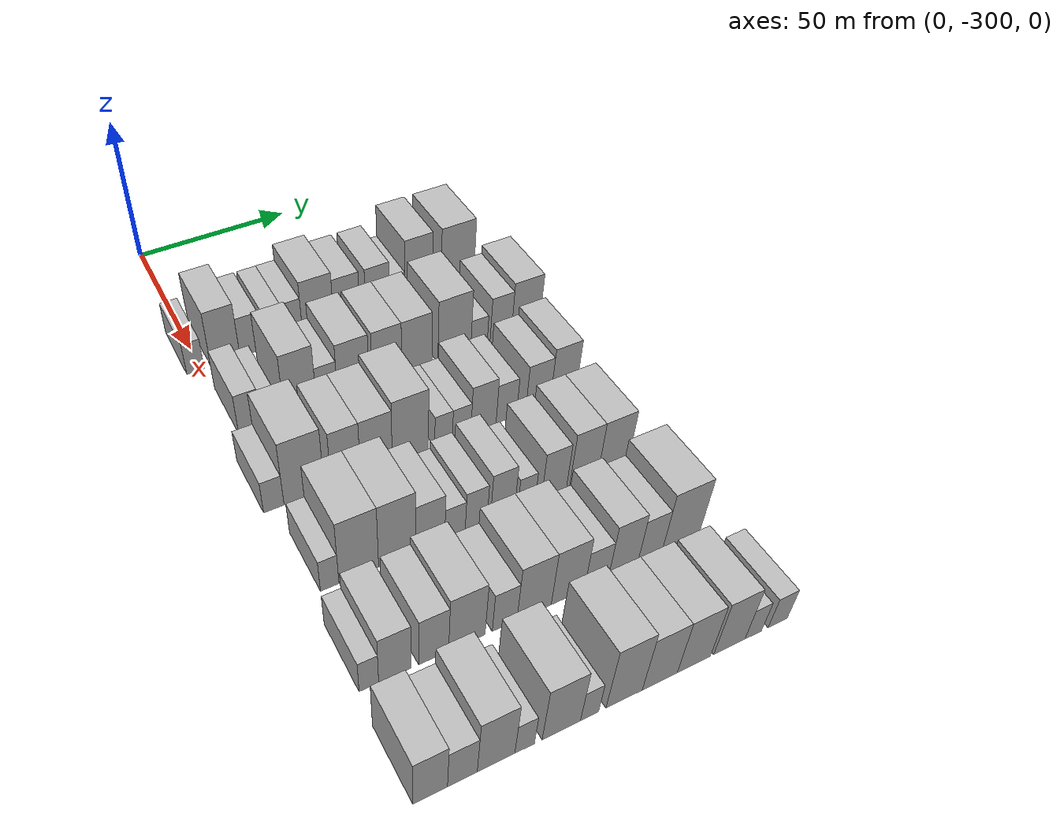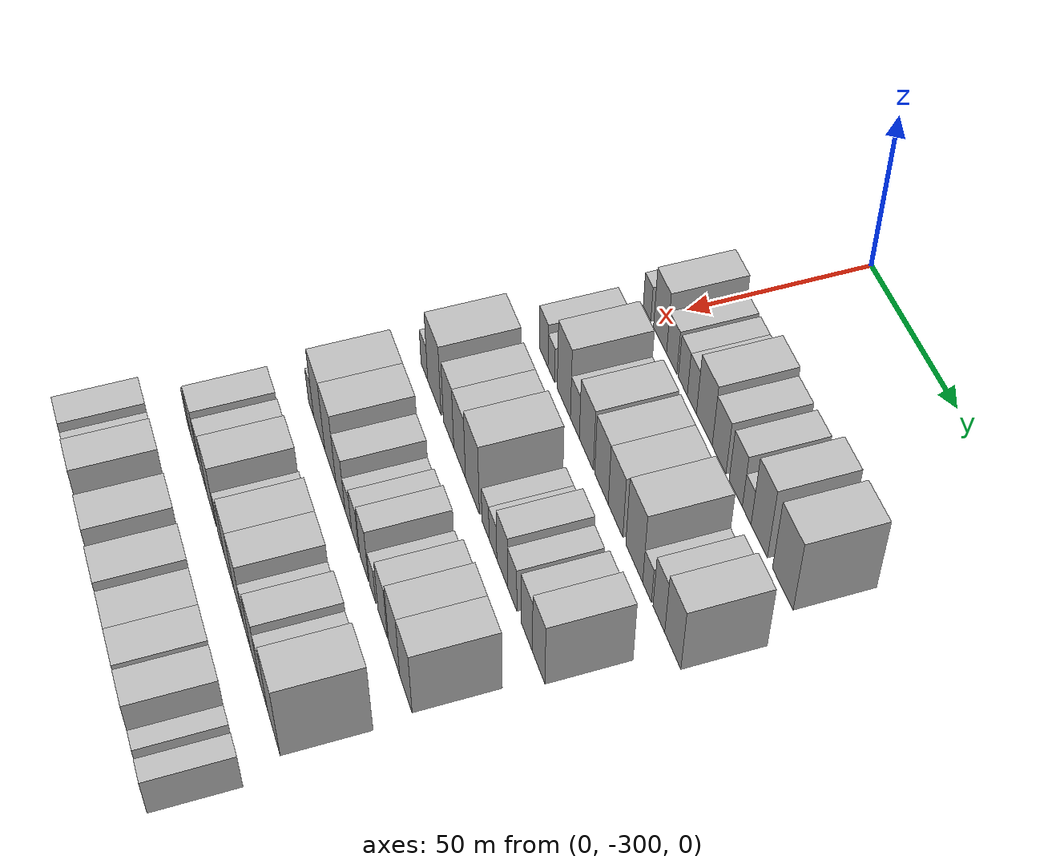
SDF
<sdf version="1.6">
 <world name="default">
  <model name="building_25">
   <static>1</static>
   <pose>50.0000 -301.7349 0 0.000000 0.000000 0.000000</pose>
   <link name="link">
    <pose>0 0 6.00 0 0 0</pose>
    <collision name="collision"><geometry><box><size>20.0000 5.4171 12.0000</size></box></geometry></collision>
    <visual name="visual">
     <cast_shadows>0</cast_shadows>
     <geometry><box><size>20.0000 5.4171 12.0000</size></box></geometry>
     <material>
      <script>
       <uri>model://HANNAS_wall/materials/scripts</uri>
       <uri>model://HANNAS_wall/materials/textures</uri>
       <name>vrc/HANNAS_wall</name>
      </script>
     </material>
    </visual>
   </link>
  </model>
  <model name="building_26">
   <static>1</static>
   <pose>50.0000 -292.4270 0 0.000000 0.000000 0.000000</pose>
   <link name="link">
    <pose>0 0 10.50 0 0 0</pose>
    <collision name="collision"><geometry><box><size>20.0000 9.1986 21.0000</size></box></geometry></collision>
    <visual name="visual">
     <cast_shadows>0</cast_shadows>
     <geometry><box><size>20.0000 9.1986 21.0000</size></box></geometry>
     <material>
      <script>
       <uri>model://HANNAS_wall/materials/scripts</uri>
       <uri>model://HANNAS_wall/materials/textures</uri>
       <name>vrc/HANNAS_wall</name>
      </script>
     </material>
    </visual>
   </link>
  </model>
  <model name="building_27">
   <static>1</static>
   <pose>50.0000 -284.2589 0 0.000000 0.000000 0.000000</pose>
   <link name="link">
    <pose>0 0 7.50 0 0 0</pose>
    <collision name="collision"><geometry><box><size>20.0000 7.1375 15.0000</size></box></geometry></collision>
    <visual name="visual">
     <cast_shadows>0</cast_shadows>
     <geometry><box><size>20.0000 7.1375 15.0000</size></box></geometry>
     <material>
      <script>
       <uri>model://HANNAS_wall/materials/scripts</uri>
       <uri>model://HANNAS_wall/materials/textures</uri>
       <name>vrc/HANNAS_wall</name>
      </script>
     </material>
    </visual>
   </link>
  </model>
  <model name="building_28">
   <static>1</static>
   <pose>50.0000 -276.6328 0 0.000000 0.000000 0.000000</pose>
   <link name="link">
    <pose>0 0 7.50 0 0 0</pose>
    <collision name="collision"><geometry><box><size>20.0000 6.1146 15.0000</size></box></geometry></collision>
    <visual name="visual">
     <cast_shadows>0</cast_shadows>
     <geometry><box><size>20.0000 6.1146 15.0000</size></box></geometry>
     <material>
      <script>
       <uri>model://HANNAS_wall/materials/scripts</uri>
       <uri>model://HANNAS_wall/materials/textures</uri>
       <name>vrc/HANNAS_wall</name>
      </script>
     </material>
    </visual>
   </link>
  </model>
  <model name="building_29">
   <static>1</static>
   <pose>50.0000 -270.5275 0 0.000000 0.000000 0.000000</pose>
   <link name="link">
    <pose>0 0 7.50 0 0 0</pose>
    <collision name="collision"><geometry><box><size>20.0000 6.0960 15.0000</size></box></geometry></collision>
    <visual name="visual">
     <cast_shadows>0</cast_shadows>
     <geometry><box><size>20.0000 6.0960 15.0000</size></box></geometry>
     <material>
      <script>
       <uri>model://HANNAS_wall/materials/scripts</uri>
       <uri>model://HANNAS_wall/materials/textures</uri>
       <name>vrc/HANNAS_wall</name>
      </script>
     </material>
    </visual>
   </link>
  </model>
  <model name="building_30">
   <static>1</static>
   <pose>50.0000 -262.2955 0 0.000000 0.000000 0.000000</pose>
   <link name="link">
    <pose>0 0 10.50 0 0 0</pose>
    <collision name="collision"><geometry><box><size>20.0000 10.3679 21.0000</size></box></geometry></collision>
    <visual name="visual">
     <cast_shadows>0</cast_shadows>
     <geometry><box><size>20.0000 10.3679 21.0000</size></box></geometry>
     <material>
      <script>
       <uri>model://HANNAS_wall/materials/scripts</uri>
       <uri>model://HANNAS_wall/materials/textures</uri>
       <name>vrc/HANNAS_wall</name>
      </script>
     </material>
    </visual>
   </link>
  </model>
  <model name="building_31">
   <static>1</static>
   <pose>50.0000 -252.7053 0 0.000000 0.000000 0.000000</pose>
   <link name="link">
    <pose>0 0 9.00 0 0 0</pose>
    <collision name="collision"><geometry><box><size>20.0000 8.8126 18.0000</size></box></geometry></collision>
    <visual name="visual">
     <cast_shadows>0</cast_shadows>
     <geometry><box><size>20.0000 8.8126 18.0000</size></box></geometry>
     <material>
      <script>
       <uri>model://HANNAS_wall/materials/scripts</uri>
       <uri>model://HANNAS_wall/materials/textures</uri>
       <name>vrc/HANNAS_wall</name>
      </script>
     </material>
    </visual>
   </link>
  </model>
  <model name="building_32">
   <static>1</static>
   <pose>50.0000 -242.1988 0 0.000000 0.000000 0.000000</pose>
   <link name="link">
    <pose>0 0 9.00 0 0 0</pose>
    <collision name="collision"><geometry><box><size>20.0000 8.2003 18.0000</size></box></geometry></collision>
    <visual name="visual">
     <cast_shadows>0</cast_shadows>
     <geometry><box><size>20.0000 8.2003 18.0000</size></box></geometry>
     <material>
      <script>
       <uri>model://HANNAS_wall/materials/scripts</uri>
       <uri>model://HANNAS_wall/materials/textures</uri>
       <name>vrc/HANNAS_wall</name>
      </script>
     </material>
    </visual>
   </link>
  </model>
  <model name="building_33">
   <static>1</static>
   <pose>50.0000 -235.4329 0 0.000000 0.000000 0.000000</pose>
   <link name="link">
    <pose>0 0 6.00 0 0 0</pose>
    <collision name="collision"><geometry><box><size>20.0000 5.3316 12.0000</size></box></geometry></collision>
    <visual name="visual">
     <cast_shadows>0</cast_shadows>
     <geometry><box><size>20.0000 5.3316 12.0000</size></box></geometry>
     <material>
      <script>
       <uri>model://HANNAS_wall/materials/scripts</uri>
       <uri>model://HANNAS_wall/materials/textures</uri>
       <name>vrc/HANNAS_wall</name>
      </script>
     </material>
    </visual>
   </link>
  </model>
  <model name="building_34">
   <static>1</static>
   <pose>50.0000 -227.8600 0 0.000000 0.000000 0.000000</pose>
   <link name="link">
    <pose>0 0 12.00 0 0 0</pose>
    <collision name="collision"><geometry><box><size>20.0000 9.8141 24.0000</size></box></geometry></collision>
    <visual name="visual">
     <cast_shadows>0</cast_shadows>
     <geometry><box><size>20.0000 9.8141 24.0000</size></box></geometry>
     <material>
      <script>
       <uri>model://HANNAS_wall/materials/scripts</uri>
       <uri>model://HANNAS_wall/materials/textures</uri>
       <name>vrc/HANNAS_wall</name>
      </script>
     </material>
    </visual>
   </link>
  </model>
  <model name="building_35">
   <static>1</static>
   <pose>50.0000 -213.9845 0 0.000000 0.000000 0.000000</pose>
   <link name="link">
    <pose>0 0 12.00 0 0 0</pose>
    <collision name="collision"><geometry><box><size>20.0000 11.9370 24.0000</size></box></geometry></collision>
    <visual name="visual">
     <cast_shadows>0</cast_shadows>
     <geometry><box><size>20.0000 11.9370 24.0000</size></box></geometry>
     <material>
      <script>
       <uri>model://HANNAS_wall/materials/scripts</uri>
       <uri>model://HANNAS_wall/materials/textures</uri>
       <name>vrc/HANNAS_wall</name>
      </script>
     </material>
    </visual>
   </link>
  </model>
  <model name="building_137">
   <static>1</static>
   <pose>79.0000 -295.7201 0 0.000000 0.000000 0.000000</pose>
   <link name="link">
    <pose>0 0 7.50 0 0 0</pose>
    <collision name="collision"><geometry><box><size>20.0000 6.7106 15.0000</size></box></geometry></collision>
    <visual name="visual">
     <cast_shadows>0</cast_shadows>
     <geometry><box><size>20.0000 6.7106 15.0000</size></box></geometry>
     <material>
      <script>
       <uri>model://HANNAS_wall/materials/scripts</uri>
       <uri>model://HANNAS_wall/materials/textures</uri>
       <name>vrc/HANNAS_wall</name>
      </script>
     </material>
    </visual>
   </link>
  </model>
  <model name="building_138">
   <static>1</static>
   <pose>79.0000 -289.8115 0 0.000000 0.000000 0.000000</pose>
   <link name="link">
    <pose>0 0 6.00 0 0 0</pose>
    <collision name="collision"><geometry><box><size>20.0000 5.1065 12.0000</size></box></geometry></collision>
    <visual name="visual">
     <cast_shadows>0</cast_shadows>
     <geometry><box><size>20.0000 5.1065 12.0000</size></box></geometry>
     <material>
      <script>
       <uri>model://HANNAS_wall/materials/scripts</uri>
       <uri>model://HANNAS_wall/materials/textures</uri>
       <name>vrc/HANNAS_wall</name>
      </script>
     </material>
    </visual>
   </link>
  </model>
  <model name="building_139">
   <static>1</static>
   <pose>79.0000 -280.3154 0 0.000000 0.000000 0.000000</pose>
   <link name="link">
    <pose>0 0 12.00 0 0 0</pose>
    <collision name="collision"><geometry><box><size>20.0000 9.8858 24.0000</size></box></geometry></collision>
    <visual name="visual">
     <cast_shadows>0</cast_shadows>
     <geometry><box><size>20.0000 9.8858 24.0000</size></box></geometry>
     <material>
      <script>
       <uri>model://HANNAS_wall/materials/scripts</uri>
       <uri>model://HANNAS_wall/materials/textures</uri>
       <name>vrc/HANNAS_wall</name>
      </script>
     </material>
    </visual>
   </link>
  </model>
  <model name="building_140">
   <static>1</static>
   <pose>79.0000 -272.0874 0 0.000000 0.000000 0.000000</pose>
   <link name="link">
    <pose>0 0 7.50 0 0 0</pose>
    <collision name="collision"><geometry><box><size>20.0000 6.5702 15.0000</size></box></geometry></collision>
    <visual name="visual">
     <cast_shadows>0</cast_shadows>
     <geometry><box><size>20.0000 6.5702 15.0000</size></box></geometry>
     <material>
      <script>
       <uri>model://HANNAS_wall/materials/scripts</uri>
       <uri>model://HANNAS_wall/materials/textures</uri>
       <name>vrc/HANNAS_wall</name>
      </script>
     </material>
    </visual>
   </link>
  </model>
  <model name="building_141">
   <static>1</static>
   <pose>79.0000 -263.7664 0 0.000000 0.000000 0.000000</pose>
   <link name="link">
    <pose>0 0 10.50 0 0 0</pose>
    <collision name="collision"><geometry><box><size>20.0000 10.0719 21.0000</size></box></geometry></collision>
    <visual name="visual">
     <cast_shadows>0</cast_shadows>
     <geometry><box><size>20.0000 10.0719 21.0000</size></box></geometry>
     <material>
      <script>
       <uri>model://HANNAS_wall/materials/scripts</uri>
       <uri>model://HANNAS_wall/materials/textures</uri>
       <name>vrc/HANNAS_wall</name>
      </script>
     </material>
    </visual>
   </link>
  </model>
  <model name="building_142">
   <static>1</static>
   <pose>79.0000 -252.9875 0 0.000000 0.000000 0.000000</pose>
   <link name="link">
    <pose>0 0 10.50 0 0 0</pose>
    <collision name="collision"><geometry><box><size>20.0000 9.4858 21.0000</size></box></geometry></collision>
    <visual name="visual">
     <cast_shadows>0</cast_shadows>
     <geometry><box><size>20.0000 9.4858 21.0000</size></box></geometry>
     <material>
      <script>
       <uri>model://HANNAS_wall/materials/scripts</uri>
       <uri>model://HANNAS_wall/materials/textures</uri>
       <name>vrc/HANNAS_wall</name>
      </script>
     </material>
    </visual>
   </link>
  </model>
  <model name="building_143">
   <static>1</static>
   <pose>79.0000 -243.2596 0 0.000000 0.000000 0.000000</pose>
   <link name="link">
    <pose>0 0 10.50 0 0 0</pose>
    <collision name="collision"><geometry><box><size>20.0000 9.9701 21.0000</size></box></geometry></collision>
    <visual name="visual">
     <cast_shadows>0</cast_shadows>
     <geometry><box><size>20.0000 9.9701 21.0000</size></box></geometry>
     <material>
      <script>
       <uri>model://HANNAS_wall/materials/scripts</uri>
       <uri>model://HANNAS_wall/materials/textures</uri>
       <name>vrc/HANNAS_wall</name>
      </script>
     </material>
    </visual>
   </link>
  </model>
  <model name="building_144">
   <static>1</static>
   <pose>79.0000 -230.6958 0 0.000000 0.000000 0.000000</pose>
   <link name="link">
    <pose>0 0 12.00 0 0 0</pose>
    <collision name="collision"><geometry><box><size>20.0000 11.1575 24.0000</size></box></geometry></collision>
    <visual name="visual">
     <cast_shadows>0</cast_shadows>
     <geometry><box><size>20.0000 11.1575 24.0000</size></box></geometry>
     <material>
      <script>
       <uri>model://HANNAS_wall/materials/scripts</uri>
       <uri>model://HANNAS_wall/materials/textures</uri>
       <name>vrc/HANNAS_wall</name>
      </script>
     </material>
    </visual>
   </link>
  </model>
  <model name="building_145">
   <static>1</static>
   <pose>79.0000 -222.2917 0 0.000000 0.000000 0.000000</pose>
   <link name="link">
    <pose>0 0 6.00 0 0 0</pose>
    <collision name="collision"><geometry><box><size>20.0000 5.6507 12.0000</size></box></geometry></collision>
    <visual name="visual">
     <cast_shadows>0</cast_shadows>
     <geometry><box><size>20.0000 5.6507 12.0000</size></box></geometry>
     <material>
      <script>
       <uri>model://HANNAS_wall/materials/scripts</uri>
       <uri>model://HANNAS_wall/materials/textures</uri>
       <name>vrc/HANNAS_wall</name>
      </script>
     </material>
    </visual>
   </link>
  </model>
  <model name="building_146">
   <static>1</static>
   <pose>79.0000 -214.7589 0 0.000000 0.000000 0.000000</pose>
   <link name="link">
    <pose>0 0 9.00 0 0 0</pose>
    <collision name="collision"><geometry><box><size>20.0000 7.4148 18.0000</size></box></geometry></collision>
    <visual name="visual">
     <cast_shadows>0</cast_shadows>
     <geometry><box><size>20.0000 7.4148 18.0000</size></box></geometry>
     <material>
      <script>
       <uri>model://HANNAS_wall/materials/scripts</uri>
       <uri>model://HANNAS_wall/materials/textures</uri>
       <name>vrc/HANNAS_wall</name>
      </script>
     </material>
    </visual>
   </link>
  </model>
  <model name="building_147">
   <static>1</static>
   <pose>79.0000 -206.0558 0 0.000000 0.000000 0.000000</pose>
   <link name="link">
    <pose>0 0 10.50 0 0 0</pose>
    <collision name="collision"><geometry><box><size>20.0000 9.9916 21.0000</size></box></geometry></collision>
    <visual name="visual">
     <cast_shadows>0</cast_shadows>
     <geometry><box><size>20.0000 9.9916 21.0000</size></box></geometry>
     <material>
      <script>
       <uri>model://HANNAS_wall/materials/scripts</uri>
       <uri>model://HANNAS_wall/materials/textures</uri>
       <name>vrc/HANNAS_wall</name>
      </script>
     </material>
    </visual>
   </link>
  </model>
  <model name="building_248">
   <static>1</static>
   <pose>108.0000 -300.0922 0 0.000000 0.000000 0.000000</pose>
   <link name="link">
    <pose>0 0 6.00 0 0 0</pose>
    <collision name="collision"><geometry><box><size>20.0000 5.7812 12.0000</size></box></geometry></collision>
    <visual name="visual">
     <cast_shadows>0</cast_shadows>
     <geometry><box><size>20.0000 5.7812 12.0000</size></box></geometry>
     <material>
      <script>
       <uri>model://HANNAS_wall/materials/scripts</uri>
       <uri>model://HANNAS_wall/materials/textures</uri>
       <name>vrc/HANNAS_wall</name>
      </script>
     </material>
    </visual>
   </link>
  </model>
  <model name="building_249">
   <static>1</static>
   <pose>108.0000 -291.4228 0 0.000000 0.000000 0.000000</pose>
   <link name="link">
    <pose>0 0 12.00 0 0 0</pose>
    <collision name="collision"><geometry><box><size>20.0000 11.5576 24.0000</size></box></geometry></collision>
    <visual name="visual">
     <cast_shadows>0</cast_shadows>
     <geometry><box><size>20.0000 11.5576 24.0000</size></box></geometry>
     <material>
      <script>
       <uri>model://HANNAS_wall/materials/scripts</uri>
       <uri>model://HANNAS_wall/materials/textures</uri>
       <name>vrc/HANNAS_wall</name>
      </script>
     </material>
    </visual>
   </link>
  </model>
  <model name="building_250">
   <static>1</static>
   <pose>108.0000 -279.3226 0 0.000000 0.000000 0.000000</pose>
   <link name="link">
    <pose>0 0 10.50 0 0 0</pose>
    <collision name="collision"><geometry><box><size>20.0000 8.6429 21.0000</size></box></geometry></collision>
    <visual name="visual">
     <cast_shadows>0</cast_shadows>
     <geometry><box><size>20.0000 8.6429 21.0000</size></box></geometry>
     <material>
      <script>
       <uri>model://HANNAS_wall/materials/scripts</uri>
       <uri>model://HANNAS_wall/materials/textures</uri>
       <name>vrc/HANNAS_wall</name>
      </script>
     </material>
    </visual>
   </link>
  </model>
  <model name="building_251">
   <static>1</static>
   <pose>108.0000 -270.2384 0 0.000000 0.000000 0.000000</pose>
   <link name="link">
    <pose>0 0 10.50 0 0 0</pose>
    <collision name="collision"><geometry><box><size>20.0000 9.5254 21.0000</size></box></geometry></collision>
    <visual name="visual">
     <cast_shadows>0</cast_shadows>
     <geometry><box><size>20.0000 9.5254 21.0000</size></box></geometry>
     <material>
      <script>
       <uri>model://HANNAS_wall/materials/scripts</uri>
       <uri>model://HANNAS_wall/materials/textures</uri>
       <name>vrc/HANNAS_wall</name>
      </script>
     </material>
    </visual>
   </link>
  </model>
  <model name="building_252">
   <static>1</static>
   <pose>108.0000 -259.9695 0 0.000000 0.000000 0.000000</pose>
   <link name="link">
    <pose>0 0 12.00 0 0 0</pose>
    <collision name="collision"><geometry><box><size>20.0000 11.0124 24.0000</size></box></geometry></collision>
    <visual name="visual">
     <cast_shadows>0</cast_shadows>
     <geometry><box><size>20.0000 11.0124 24.0000</size></box></geometry>
     <material>
      <script>
       <uri>model://HANNAS_wall/materials/scripts</uri>
       <uri>model://HANNAS_wall/materials/textures</uri>
       <name>vrc/HANNAS_wall</name>
      </script>
     </material>
    </visual>
   </link>
  </model>
  <model name="building_253">
   <static>1</static>
   <pose>108.0000 -249.6859 0 0.000000 0.000000 0.000000</pose>
   <link name="link">
    <pose>0 0 6.00 0 0 0</pose>
    <collision name="collision"><geometry><box><size>20.0000 5.5548 12.0000</size></box></geometry></collision>
    <visual name="visual">
     <cast_shadows>0</cast_shadows>
     <geometry><box><size>20.0000 5.5548 12.0000</size></box></geometry>
     <material>
      <script>
       <uri>model://HANNAS_wall/materials/scripts</uri>
       <uri>model://HANNAS_wall/materials/textures</uri>
       <name>vrc/HANNAS_wall</name>
      </script>
     </material>
    </visual>
   </link>
  </model>
  <model name="building_254">
   <static>1</static>
   <pose>108.0000 -243.9829 0 0.000000 0.000000 0.000000</pose>
   <link name="link">
    <pose>0 0 6.00 0 0 0</pose>
    <collision name="collision"><geometry><box><size>20.0000 5.8512 12.0000</size></box></geometry></collision>
    <visual name="visual">
     <cast_shadows>0</cast_shadows>
     <geometry><box><size>20.0000 5.8512 12.0000</size></box></geometry>
     <material>
      <script>
       <uri>model://HANNAS_wall/materials/scripts</uri>
       <uri>model://HANNAS_wall/materials/textures</uri>
       <name>vrc/HANNAS_wall</name>
      </script>
     </material>
    </visual>
   </link>
  </model>
  <model name="building_255">
   <static>1</static>
   <pose>108.0000 -236.9918 0 0.000000 0.000000 0.000000</pose>
   <link name="link">
    <pose>0 0 9.00 0 0 0</pose>
    <collision name="collision"><geometry><box><size>20.0000 8.1310 18.0000</size></box></geometry></collision>
    <visual name="visual">
     <cast_shadows>0</cast_shadows>
     <geometry><box><size>20.0000 8.1310 18.0000</size></box></geometry>
     <material>
      <script>
       <uri>model://HANNAS_wall/materials/scripts</uri>
       <uri>model://HANNAS_wall/materials/textures</uri>
       <name>vrc/HANNAS_wall</name>
      </script>
     </material>
    </visual>
   </link>
  </model>
  <model name="building_256">
   <static>1</static>
   <pose>108.0000 -229.6033 0 0.000000 0.000000 0.000000</pose>
   <link name="link">
    <pose>0 0 7.50 0 0 0</pose>
    <collision name="collision"><geometry><box><size>20.0000 6.6459 15.0000</size></box></geometry></collision>
    <visual name="visual">
     <cast_shadows>0</cast_shadows>
     <geometry><box><size>20.0000 6.6459 15.0000</size></box></geometry>
     <material>
      <script>
       <uri>model://HANNAS_wall/materials/scripts</uri>
       <uri>model://HANNAS_wall/materials/textures</uri>
       <name>vrc/HANNAS_wall</name>
      </script>
     </material>
    </visual>
   </link>
  </model>
  <model name="building_257">
   <static>1</static>
   <pose>108.0000 -219.1989 0 0.000000 0.000000 0.000000</pose>
   <link name="link">
    <pose>0 0 9.00 0 0 0</pose>
    <collision name="collision"><geometry><box><size>20.0000 8.1629 18.0000</size></box></geometry></collision>
    <visual name="visual">
     <cast_shadows>0</cast_shadows>
     <geometry><box><size>20.0000 8.1629 18.0000</size></box></geometry>
     <material>
      <script>
       <uri>model://HANNAS_wall/materials/scripts</uri>
       <uri>model://HANNAS_wall/materials/textures</uri>
       <name>vrc/HANNAS_wall</name>
      </script>
     </material>
    </visual>
   </link>
  </model>
  <model name="building_258">
   <static>1</static>
   <pose>108.0000 -210.7782 0 0.000000 0.000000 0.000000</pose>
   <link name="link">
    <pose>0 0 10.50 0 0 0</pose>
    <collision name="collision"><geometry><box><size>20.0000 8.6784 21.0000</size></box></geometry></collision>
    <visual name="visual">
     <cast_shadows>0</cast_shadows>
     <geometry><box><size>20.0000 8.6784 21.0000</size></box></geometry>
     <material>
      <script>
       <uri>model://HANNAS_wall/materials/scripts</uri>
       <uri>model://HANNAS_wall/materials/textures</uri>
       <name>vrc/HANNAS_wall</name>
      </script>
     </material>
    </visual>
   </link>
  </model>
  <model name="building_358">
   <static>1</static>
   <pose>137.0000 -296.8478 0 0.000000 0.000000 0.000000</pose>
   <link name="link">
    <pose>0 0 6.00 0 0 0</pose>
    <collision name="collision"><geometry><box><size>20.0000 5.0058 12.0000</size></box></geometry></collision>
    <visual name="visual">
     <cast_shadows>0</cast_shadows>
     <geometry><box><size>20.0000 5.0058 12.0000</size></box></geometry>
     <material>
      <script>
       <uri>model://HANNAS_wall/materials/scripts</uri>
       <uri>model://HANNAS_wall/materials/textures</uri>
       <name>vrc/HANNAS_wall</name>
      </script>
     </material>
    </visual>
   </link>
  </model>
  <model name="building_359">
   <static>1</static>
   <pose>137.0000 -288.8974 0 0.000000 0.000000 0.000000</pose>
   <link name="link">
    <pose>0 0 12.00 0 0 0</pose>
    <collision name="collision"><geometry><box><size>20.0000 10.8950 24.0000</size></box></geometry></collision>
    <visual name="visual">
     <cast_shadows>0</cast_shadows>
     <geometry><box><size>20.0000 10.8950 24.0000</size></box></geometry>
     <material>
      <script>
       <uri>model://HANNAS_wall/materials/scripts</uri>
       <uri>model://HANNAS_wall/materials/textures</uri>
       <name>vrc/HANNAS_wall</name>
      </script>
     </material>
    </visual>
   </link>
  </model>
  <model name="building_360">
   <static>1</static>
   <pose>137.0000 -278.2419 0 0.000000 0.000000 0.000000</pose>
   <link name="link">
    <pose>0 0 12.00 0 0 0</pose>
    <collision name="collision"><geometry><box><size>20.0000 10.4161 24.0000</size></box></geometry></collision>
    <visual name="visual">
     <cast_shadows>0</cast_shadows>
     <geometry><box><size>20.0000 10.4161 24.0000</size></box></geometry>
     <material>
      <script>
       <uri>model://HANNAS_wall/materials/scripts</uri>
       <uri>model://HANNAS_wall/materials/textures</uri>
       <name>vrc/HANNAS_wall</name>
      </script>
     </material>
    </visual>
   </link>
  </model>
  <model name="building_361">
   <static>1</static>
   <pose>137.0000 -268.8644 0 0.000000 0.000000 0.000000</pose>
   <link name="link">
    <pose>0 0 9.00 0 0 0</pose>
    <collision name="collision"><geometry><box><size>20.0000 8.3387 18.0000</size></box></geometry></collision>
    <visual name="visual">
     <cast_shadows>0</cast_shadows>
     <geometry><box><size>20.0000 8.3387 18.0000</size></box></geometry>
     <material>
      <script>
       <uri>model://HANNAS_wall/materials/scripts</uri>
       <uri>model://HANNAS_wall/materials/textures</uri>
       <name>vrc/HANNAS_wall</name>
      </script>
     </material>
    </visual>
   </link>
  </model>
  <model name="building_362">
   <static>1</static>
   <pose>137.0000 -261.7004 0 0.000000 0.000000 0.000000</pose>
   <link name="link">
    <pose>0 0 6.00 0 0 0</pose>
    <collision name="collision"><geometry><box><size>20.0000 5.9894 12.0000</size></box></geometry></collision>
    <visual name="visual">
     <cast_shadows>0</cast_shadows>
     <geometry><box><size>20.0000 5.9894 12.0000</size></box></geometry>
     <material>
      <script>
       <uri>model://HANNAS_wall/materials/scripts</uri>
       <uri>model://HANNAS_wall/materials/textures</uri>
       <name>vrc/HANNAS_wall</name>
      </script>
     </material>
    </visual>
   </link>
  </model>
  <model name="building_363">
   <static>1</static>
   <pose>137.0000 -255.4915 0 0.000000 0.000000 0.000000</pose>
   <link name="link">
    <pose>0 0 7.50 0 0 0</pose>
    <collision name="collision"><geometry><box><size>20.0000 6.4284 15.0000</size></box></geometry></collision>
    <visual name="visual">
     <cast_shadows>0</cast_shadows>
     <geometry><box><size>20.0000 6.4284 15.0000</size></box></geometry>
     <material>
      <script>
       <uri>model://HANNAS_wall/materials/scripts</uri>
       <uri>model://HANNAS_wall/materials/textures</uri>
       <name>vrc/HANNAS_wall</name>
      </script>
     </material>
    </visual>
   </link>
  </model>
  <model name="building_364">
   <static>1</static>
   <pose>137.0000 -247.6320 0 0.000000 0.000000 0.000000</pose>
   <link name="link">
    <pose>0 0 9.00 0 0 0</pose>
    <collision name="collision"><geometry><box><size>20.0000 7.2905 18.0000</size></box></geometry></collision>
    <visual name="visual">
     <cast_shadows>0</cast_shadows>
     <geometry><box><size>20.0000 7.2905 18.0000</size></box></geometry>
     <material>
      <script>
       <uri>model://HANNAS_wall/materials/scripts</uri>
       <uri>model://HANNAS_wall/materials/textures</uri>
       <name>vrc/HANNAS_wall</name>
      </script>
     </material>
    </visual>
   </link>
  </model>
  <model name="building_365">
   <static>1</static>
   <pose>137.0000 -240.3489 0 0.000000 0.000000 0.000000</pose>
   <link name="link">
    <pose>0 0 6.00 0 0 0</pose>
    <collision name="collision"><geometry><box><size>20.0000 5.2757 12.0000</size></box></geometry></collision>
    <visual name="visual">
     <cast_shadows>0</cast_shadows>
     <geometry><box><size>20.0000 5.2757 12.0000</size></box></geometry>
     <material>
      <script>
       <uri>model://HANNAS_wall/materials/scripts</uri>
       <uri>model://HANNAS_wall/materials/textures</uri>
       <name>vrc/HANNAS_wall</name>
      </script>
     </material>
    </visual>
   </link>
  </model>
  <model name="building_366">
   <static>1</static>
   <pose>137.0000 -231.8401 0 0.000000 0.000000 0.000000</pose>
   <link name="link">
    <pose>0 0 9.00 0 0 0</pose>
    <collision name="collision"><geometry><box><size>20.0000 7.7419 18.0000</size></box></geometry></collision>
    <visual name="visual">
     <cast_shadows>0</cast_shadows>
     <geometry><box><size>20.0000 7.7419 18.0000</size></box></geometry>
     <material>
      <script>
       <uri>model://HANNAS_wall/materials/scripts</uri>
       <uri>model://HANNAS_wall/materials/textures</uri>
       <name>vrc/HANNAS_wall</name>
      </script>
     </material>
    </visual>
   </link>
  </model>
  <model name="building_367">
   <static>1</static>
   <pose>137.0000 -222.4846 0 0.000000 0.000000 0.000000</pose>
   <link name="link">
    <pose>0 0 10.50 0 0 0</pose>
    <collision name="collision"><geometry><box><size>20.0000 8.9692 21.0000</size></box></geometry></collision>
    <visual name="visual">
     <cast_shadows>0</cast_shadows>
     <geometry><box><size>20.0000 8.9692 21.0000</size></box></geometry>
     <material>
      <script>
       <uri>model://HANNAS_wall/materials/scripts</uri>
       <uri>model://HANNAS_wall/materials/textures</uri>
       <name>vrc/HANNAS_wall</name>
      </script>
     </material>
    </visual>
   </link>
  </model>
  <model name="building_368">
   <static>1</static>
   <pose>137.0000 -213.1082 0 0.000000 0.000000 0.000000</pose>
   <link name="link">
    <pose>0 0 10.50 0 0 0</pose>
    <collision name="collision"><geometry><box><size>20.0000 9.7835 21.0000</size></box></geometry></collision>
    <visual name="visual">
     <cast_shadows>0</cast_shadows>
     <geometry><box><size>20.0000 9.7835 21.0000</size></box></geometry>
     <material>
      <script>
       <uri>model://HANNAS_wall/materials/scripts</uri>
       <uri>model://HANNAS_wall/materials/textures</uri>
       <name>vrc/HANNAS_wall</name>
      </script>
     </material>
    </visual>
   </link>
  </model>
  <model name="building_472">
   <static>1</static>
   <pose>166.0000 -299.7806 0 0.000000 0.000000 0.000000</pose>
   <link name="link">
    <pose>0 0 6.00 0 0 0</pose>
    <collision name="collision"><geometry><box><size>20.0000 4.9802 12.0000</size></box></geometry></collision>
    <visual name="visual">
     <cast_shadows>0</cast_shadows>
     <geometry><box><size>20.0000 4.9802 12.0000</size></box></geometry>
     <material>
      <script>
       <uri>model://HANNAS_wall/materials/scripts</uri>
       <uri>model://HANNAS_wall/materials/textures</uri>
       <name>vrc/HANNAS_wall</name>
      </script>
     </material>
    </visual>
   </link>
  </model>
  <model name="building_473">
   <static>1</static>
   <pose>166.0000 -293.1122 0 0.000000 0.000000 0.000000</pose>
   <link name="link">
    <pose>0 0 9.00 0 0 0</pose>
    <collision name="collision"><geometry><box><size>20.0000 8.3566 18.0000</size></box></geometry></collision>
    <visual name="visual">
     <cast_shadows>0</cast_shadows>
     <geometry><box><size>20.0000 8.3566 18.0000</size></box></geometry>
     <material>
      <script>
       <uri>model://HANNAS_wall/materials/scripts</uri>
       <uri>model://HANNAS_wall/materials/textures</uri>
       <name>vrc/HANNAS_wall</name>
      </script>
     </material>
    </visual>
   </link>
  </model>
  <model name="building_474">
   <static>1</static>
   <pose>166.0000 -282.9784 0 0.000000 0.000000 0.000000</pose>
   <link name="link">
    <pose>0 0 9.00 0 0 0</pose>
    <collision name="collision"><geometry><box><size>20.0000 7.9109 18.0000</size></box></geometry></collision>
    <visual name="visual">
     <cast_shadows>0</cast_shadows>
     <geometry><box><size>20.0000 7.9109 18.0000</size></box></geometry>
     <material>
      <script>
       <uri>model://HANNAS_wall/materials/scripts</uri>
       <uri>model://HANNAS_wall/materials/textures</uri>
       <name>vrc/HANNAS_wall</name>
      </script>
     </material>
    </visual>
   </link>
  </model>
  <model name="building_475">
   <static>1</static>
   <pose>166.0000 -274.0923 0 0.000000 0.000000 0.000000</pose>
   <link name="link">
    <pose>0 0 10.50 0 0 0</pose>
    <collision name="collision"><geometry><box><size>20.0000 9.8614 21.0000</size></box></geometry></collision>
    <visual name="visual">
     <cast_shadows>0</cast_shadows>
     <geometry><box><size>20.0000 9.8614 21.0000</size></box></geometry>
     <material>
      <script>
       <uri>model://HANNAS_wall/materials/scripts</uri>
       <uri>model://HANNAS_wall/materials/textures</uri>
       <name>vrc/HANNAS_wall</name>
      </script>
     </material>
    </visual>
   </link>
  </model>
  <model name="building_476">
   <static>1</static>
   <pose>166.0000 -263.7522 0 0.000000 0.000000 0.000000</pose>
   <link name="link">
    <pose>0 0 7.50 0 0 0</pose>
    <collision name="collision"><geometry><box><size>20.0000 6.8188 15.0000</size></box></geometry></collision>
    <visual name="visual">
     <cast_shadows>0</cast_shadows>
     <geometry><box><size>20.0000 6.8188 15.0000</size></box></geometry>
     <material>
      <script>
       <uri>model://HANNAS_wall/materials/scripts</uri>
       <uri>model://HANNAS_wall/materials/textures</uri>
       <name>vrc/HANNAS_wall</name>
      </script>
     </material>
    </visual>
   </link>
  </model>
  <model name="building_477">
   <static>1</static>
   <pose>166.0000 -255.4855 0 0.000000 0.000000 0.000000</pose>
   <link name="link">
    <pose>0 0 10.50 0 0 0</pose>
    <collision name="collision"><geometry><box><size>20.0000 9.7147 21.0000</size></box></geometry></collision>
    <visual name="visual">
     <cast_shadows>0</cast_shadows>
     <geometry><box><size>20.0000 9.7147 21.0000</size></box></geometry>
     <material>
      <script>
       <uri>model://HANNAS_wall/materials/scripts</uri>
       <uri>model://HANNAS_wall/materials/textures</uri>
       <name>vrc/HANNAS_wall</name>
      </script>
     </material>
    </visual>
   </link>
  </model>
  <model name="building_478">
   <static>1</static>
   <pose>166.0000 -245.8575 0 0.000000 0.000000 0.000000</pose>
   <link name="link">
    <pose>0 0 10.50 0 0 0</pose>
    <collision name="collision"><geometry><box><size>20.0000 9.5413 21.0000</size></box></geometry></collision>
    <visual name="visual">
     <cast_shadows>0</cast_shadows>
     <geometry><box><size>20.0000 9.5413 21.0000</size></box></geometry>
     <material>
      <script>
       <uri>model://HANNAS_wall/materials/scripts</uri>
       <uri>model://HANNAS_wall/materials/textures</uri>
       <name>vrc/HANNAS_wall</name>
      </script>
     </material>
    </visual>
   </link>
  </model>
  <model name="building_479">
   <static>1</static>
   <pose>166.0000 -237.5519 0 0.000000 0.000000 0.000000</pose>
   <link name="link">
    <pose>0 0 7.50 0 0 0</pose>
    <collision name="collision"><geometry><box><size>20.0000 7.0698 15.0000</size></box></geometry></collision>
    <visual name="visual">
     <cast_shadows>0</cast_shadows>
     <geometry><box><size>20.0000 7.0698 15.0000</size></box></geometry>
     <material>
      <script>
       <uri>model://HANNAS_wall/materials/scripts</uri>
       <uri>model://HANNAS_wall/materials/textures</uri>
       <name>vrc/HANNAS_wall</name>
      </script>
     </material>
    </visual>
   </link>
  </model>
  <model name="building_480">
   <static>1</static>
   <pose>166.0000 -229.6945 0 0.000000 0.000000 0.000000</pose>
   <link name="link">
    <pose>0 0 10.50 0 0 0</pose>
    <collision name="collision"><geometry><box><size>20.0000 8.6449 21.0000</size></box></geometry></collision>
    <visual name="visual">
     <cast_shadows>0</cast_shadows>
     <geometry><box><size>20.0000 8.6449 21.0000</size></box></geometry>
     <material>
      <script>
       <uri>model://HANNAS_wall/materials/scripts</uri>
       <uri>model://HANNAS_wall/materials/textures</uri>
       <name>vrc/HANNAS_wall</name>
      </script>
     </material>
    </visual>
   </link>
  </model>
  <model name="building_481">
   <static>1</static>
   <pose>166.0000 -221.6839 0 0.000000 0.000000 0.000000</pose>
   <link name="link">
    <pose>0 0 9.00 0 0 0</pose>
    <collision name="collision"><geometry><box><size>20.0000 7.3765 18.0000</size></box></geometry></collision>
    <visual name="visual">
     <cast_shadows>0</cast_shadows>
     <geometry><box><size>20.0000 7.3765 18.0000</size></box></geometry>
     <material>
      <script>
       <uri>model://HANNAS_wall/materials/scripts</uri>
       <uri>model://HANNAS_wall/materials/textures</uri>
       <name>vrc/HANNAS_wall</name>
      </script>
     </material>
    </visual>
   </link>
  </model>
  <model name="building_482">
   <static>1</static>
   <pose>166.0000 -212.2782 0 0.000000 0.000000 0.000000</pose>
   <link name="link">
    <pose>0 0 12.00 0 0 0</pose>
    <collision name="collision"><geometry><box><size>20.0000 11.4348 24.0000</size></box></geometry></collision>
    <visual name="visual">
     <cast_shadows>0</cast_shadows>
     <geometry><box><size>20.0000 11.4348 24.0000</size></box></geometry>
     <material>
      <script>
       <uri>model://HANNAS_wall/materials/scripts</uri>
       <uri>model://HANNAS_wall/materials/textures</uri>
       <name>vrc/HANNAS_wall</name>
      </script>
     </material>
    </visual>
   </link>
  </model>
  <model name="building_576">
   <static>1</static>
   <pose>195.0000 -298.9339 0 0.000000 0.000000 0.000000</pose>
   <link name="link">
    <pose>0 0 9.00 0 0 0</pose>
    <collision name="collision"><geometry><box><size>20.0000 8.3760 18.0000</size></box></geometry></collision>
    <visual name="visual">
     <cast_shadows>0</cast_shadows>
     <geometry><box><size>20.0000 8.3760 18.0000</size></box></geometry>
     <material>
      <script>
       <uri>model://HANNAS_wall/materials/scripts</uri>
       <uri>model://HANNAS_wall/materials/textures</uri>
       <name>vrc/HANNAS_wall</name>
      </script>
     </material>
    </visual>
   </link>
  </model>
  <model name="building_577">
   <static>1</static>
   <pose>195.0000 -291.0851 0 0.000000 0.000000 0.000000</pose>
   <link name="link">
    <pose>0 0 7.50 0 0 0</pose>
    <collision name="collision"><geometry><box><size>20.0000 7.3215 15.0000</size></box></geometry></collision>
    <visual name="visual">
     <cast_shadows>0</cast_shadows>
     <geometry><box><size>20.0000 7.3215 15.0000</size></box></geometry>
     <material>
      <script>
       <uri>model://HANNAS_wall/materials/scripts</uri>
       <uri>model://HANNAS_wall/materials/textures</uri>
       <name>vrc/HANNAS_wall</name>
      </script>
     </material>
    </visual>
   </link>
  </model>
  <model name="building_578">
   <static>1</static>
   <pose>195.0000 -282.6951 0 0.000000 0.000000 0.000000</pose>
   <link name="link">
    <pose>0 0 10.50 0 0 0</pose>
    <collision name="collision"><geometry><box><size>20.0000 9.4585 21.0000</size></box></geometry></collision>
    <visual name="visual">
     <cast_shadows>0</cast_shadows>
     <geometry><box><size>20.0000 9.4585 21.0000</size></box></geometry>
     <material>
      <script>
       <uri>model://HANNAS_wall/materials/scripts</uri>
       <uri>model://HANNAS_wall/materials/textures</uri>
       <name>vrc/HANNAS_wall</name>
      </script>
     </material>
    </visual>
   </link>
  </model>
  <model name="building_579">
   <static>1</static>
   <pose>195.0000 -275.4531 0 0.000000 0.000000 0.000000</pose>
   <link name="link">
    <pose>0 0 6.00 0 0 0</pose>
    <collision name="collision"><geometry><box><size>20.0000 5.0253 12.0000</size></box></geometry></collision>
    <visual name="visual">
     <cast_shadows>0</cast_shadows>
     <geometry><box><size>20.0000 5.0253 12.0000</size></box></geometry>
     <material>
      <script>
       <uri>model://HANNAS_wall/materials/scripts</uri>
       <uri>model://HANNAS_wall/materials/textures</uri>
       <name>vrc/HANNAS_wall</name>
      </script>
     </material>
    </visual>
   </link>
  </model>
  <model name="building_580">
   <static>1</static>
   <pose>195.0000 -265.9080 0 0.000000 0.000000 0.000000</pose>
   <link name="link">
    <pose>0 0 10.50 0 0 0</pose>
    <collision name="collision"><geometry><box><size>20.0000 10.0650 21.0000</size></box></geometry></collision>
    <visual name="visual">
     <cast_shadows>0</cast_shadows>
     <geometry><box><size>20.0000 10.0650 21.0000</size></box></geometry>
     <material>
      <script>
       <uri>model://HANNAS_wall/materials/scripts</uri>
       <uri>model://HANNAS_wall/materials/textures</uri>
       <name>vrc/HANNAS_wall</name>
      </script>
     </material>
    </visual>
   </link>
  </model>
  <model name="building_581">
   <static>1</static>
   <pose>195.0000 -258.4509 0 0.000000 0.000000 0.000000</pose>
   <link name="link">
    <pose>0 0 6.00 0 0 0</pose>
    <collision name="collision"><geometry><box><size>20.0000 4.8492 12.0000</size></box></geometry></collision>
    <visual name="visual">
     <cast_shadows>0</cast_shadows>
     <geometry><box><size>20.0000 4.8492 12.0000</size></box></geometry>
     <material>
      <script>
       <uri>model://HANNAS_wall/materials/scripts</uri>
       <uri>model://HANNAS_wall/materials/textures</uri>
       <name>vrc/HANNAS_wall</name>
      </script>
     </material>
    </visual>
   </link>
  </model>
  <model name="building_582">
   <static>1</static>
   <pose>195.0000 -249.0475 0 0.000000 0.000000 0.000000</pose>
   <link name="link">
    <pose>0 0 12.00 0 0 0</pose>
    <collision name="collision"><geometry><box><size>20.0000 9.9574 24.0000</size></box></geometry></collision>
    <visual name="visual">
     <cast_shadows>0</cast_shadows>
     <geometry><box><size>20.0000 9.9574 24.0000</size></box></geometry>
     <material>
      <script>
       <uri>model://HANNAS_wall/materials/scripts</uri>
       <uri>model://HANNAS_wall/materials/textures</uri>
       <name>vrc/HANNAS_wall</name>
      </script>
     </material>
    </visual>
   </link>
  </model>
  <model name="building_583">
   <static>1</static>
   <pose>195.0000 -239.1514 0 0.000000 0.000000 0.000000</pose>
   <link name="link">
    <pose>0 0 10.50 0 0 0</pose>
    <collision name="collision"><geometry><box><size>20.0000 9.8348 21.0000</size></box></geometry></collision>
    <visual name="visual">
     <cast_shadows>0</cast_shadows>
     <geometry><box><size>20.0000 9.8348 21.0000</size></box></geometry>
     <material>
      <script>
       <uri>model://HANNAS_wall/materials/scripts</uri>
       <uri>model://HANNAS_wall/materials/textures</uri>
       <name>vrc/HANNAS_wall</name>
      </script>
     </material>
    </visual>
   </link>
  </model>
  <model name="building_584">
   <static>1</static>
   <pose>195.0000 -229.4850 0 0.000000 0.000000 0.000000</pose>
   <link name="link">
    <pose>0 0 10.50 0 0 0</pose>
    <collision name="collision"><geometry><box><size>20.0000 9.4981 21.0000</size></box></geometry></collision>
    <visual name="visual">
     <cast_shadows>0</cast_shadows>
     <geometry><box><size>20.0000 9.4981 21.0000</size></box></geometry>
     <material>
      <script>
       <uri>model://HANNAS_wall/materials/scripts</uri>
       <uri>model://HANNAS_wall/materials/textures</uri>
       <name>vrc/HANNAS_wall</name>
      </script>
     </material>
    </visual>
   </link>
  </model>
  <model name="building_585">
   <static>1</static>
   <pose>195.0000 -219.1242 0 0.000000 0.000000 0.000000</pose>
   <link name="link">
    <pose>0 0 10.50 0 0 0</pose>
    <collision name="collision"><geometry><box><size>20.0000 9.2234 21.0000</size></box></geometry></collision>
    <visual name="visual">
     <cast_shadows>0</cast_shadows>
     <geometry><box><size>20.0000 9.2234 21.0000</size></box></geometry>
     <material>
      <script>
       <uri>model://HANNAS_wall/materials/scripts</uri>
       <uri>model://HANNAS_wall/materials/textures</uri>
       <name>vrc/HANNAS_wall</name>
      </script>
     </material>
    </visual>
   </link>
  </model>
  <model name="building_586">
   <static>1</static>
   <pose>195.0000 -212.0282 0 0.000000 0.000000 0.000000</pose>
   <link name="link">
    <pose>0 0 6.00 0 0 0</pose>
    <collision name="collision"><geometry><box><size>20.0000 4.9686 12.0000</size></box></geometry></collision>
    <visual name="visual">
     <cast_shadows>0</cast_shadows>
     <geometry><box><size>20.0000 4.9686 12.0000</size></box></geometry>
     <material>
      <script>
       <uri>model://HANNAS_wall/materials/scripts</uri>
       <uri>model://HANNAS_wall/materials/textures</uri>
       <name>vrc/HANNAS_wall</name>
      </script>
     </material>
    </visual>
   </link>
  </model>
  <model name="building_587">
   <static>1</static>
   <pose>195.0000 -204.6202 0 0.000000 0.000000 0.000000</pose>
   <link name="link">
    <pose>0 0 6.00 0 0 0</pose>
    <collision name="collision"><geometry><box><size>20.0000 5.8473 12.0000</size></box></geometry></collision>
    <visual name="visual">
     <cast_shadows>0</cast_shadows>
     <geometry><box><size>20.0000 5.8473 12.0000</size></box></geometry>
     <material>
      <script>
       <uri>model://HANNAS_wall/materials/scripts</uri>
       <uri>model://HANNAS_wall/materials/textures</uri>
       <name>vrc/HANNAS_wall</name>
      </script>
     </material>
    </visual>
   </link>
  </model>
 </world>
</sdf>
